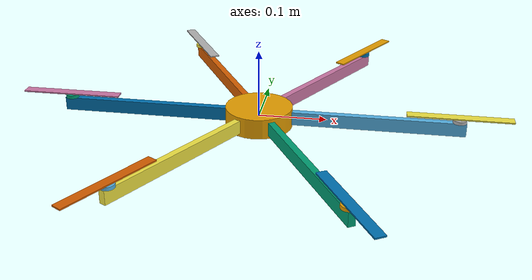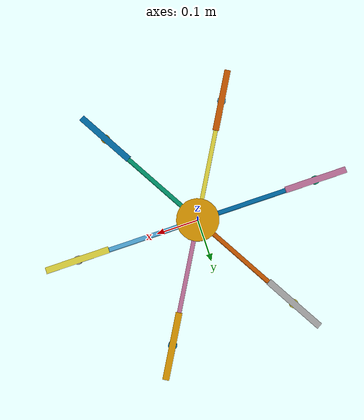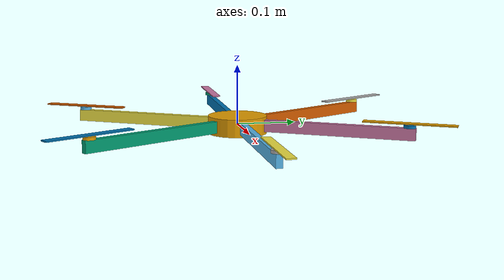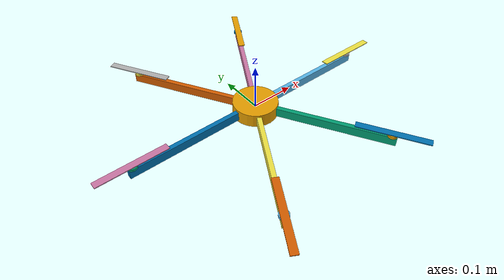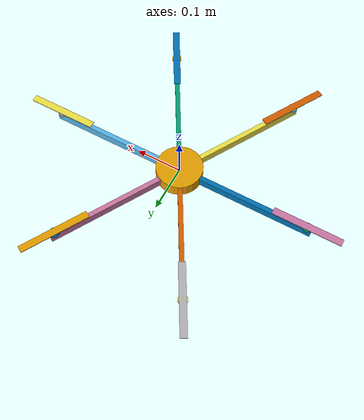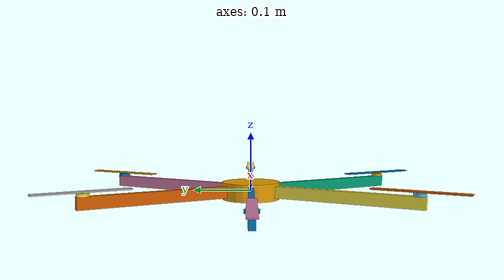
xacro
<?xml version="1.0"?>
<robot name="hexacopter" xmlns:xacro="http://www.ros.org/wiki/xacro">

<xacro:property name="body_mass" value="2"/>

<!-- body, airfoil size -->
<xacro:property name="body_s" value="1" />

<!-- body link parameters x, y, z, mass-->
<xacro:property name="body_r" value="${0.05*body_s}" />
<xacro:property name="body_h" value="${0.03*body_s}" />
<xacro:property name="body_m" value="${0.5*body_mass}" />

    <link name="body_FLU">
        <visual>
        <origin rpy="0 0 0"/>
            <geometry>
                <cylinder radius="${body_r}" length="${body_h}" />
            </geometry>
        </visual>

        <collision>
        <origin rpy="0 0 0"/>
            <geometry>
                <cylinder radius="${body_r}" length="${body_h}" />
            </geometry>
        </collision>

        <inertial>
        <origin rpy="0 0 0"/>
            <mass value="${body_m}" />
             <inertia   ixx="${1/12*body_m*body_h*body_h+1/4*body_m*body_r*body_r}" ixy="0" ixz="0" iyz="0"
                        iyy="${1/12*body_m*body_h*body_h+1/4*body_m*body_r*body_r}"
                        izz="${1/2*body_m*body_r*body_r}" />
        </inertial>

    </link>

---------------------------------------------------------- 6 quadcopter arms
<xacro:property name="arm_x" value="${0.3*body_s}" />
<xacro:property name="arm_y" value="${0.01*body_s}" />
<xacro:property name="arm_z" value="${0.02*body_s}" />
<xacro:property name="arm_m" value="${0.05*body_m}" />

    <link name="arm1">
        <visual>
        <origin xyz="${arm_x/2} 0 0"/>
            <geometry>
               <box size="${arm_x} ${arm_y} ${arm_z}" />
            </geometry>
        </visual>

        <collision>
        <origin xyz="${arm_x/2} 0 0"/>
            <geometry>
               <box size="${arm_x} ${arm_y} ${arm_z}" />
            </geometry>
        </collision>

        <inertial>
            <origin xyz="${arm_x/2} 0 0"/>
            <mass value="${arm_m}" />
            <inertia    ixx="${1/12*arm_m*(arm_y*arm_y+arm_z*arm_z)}" ixy="0" ixz="0" iyz="0"
                        iyy="${1/12*arm_m*(arm_x*arm_x+arm_z*arm_z)}"
                        izz="${1/12*arm_m*(arm_x*arm_x+arm_y*arm_y)}" />
        </inertial>
    </link>

    <joint name="body_FLU_to_arm1" type="fixed">
        <origin xyz="0 0 0" rpy="0 0 0"/>
        <parent link="body_FLU" />
        <child link="arm1" />
    </joint>

    <link name="arm2">
        <visual>
        <origin xyz="${arm_x/2} 0 0"/>
            <geometry>
                <box size="${arm_x} ${arm_y} ${arm_z}" />
            </geometry>
        </visual>

        <collision>
            <origin xyz="${arm_x/2} 0 0"/>
            <geometry>
                <box size="${arm_x} ${arm_y} ${arm_z}" />
            </geometry>
        </collision>

        <inertial>
            <origin xyz="${arm_x/2} 0 0"/>
            <mass value="${arm_m}" />
            <inertia    ixx="${1/12*arm_m*(arm_y*arm_y+arm_z*arm_z)}" ixy="0" ixz="0" iyz="0"
                        iyy="${1/12*arm_m*(arm_x*arm_x+arm_z*arm_z)}"
                        izz="${1/12*arm_m*(arm_x*arm_x+arm_y*arm_y)}" />
        </inertial>
    </link>

    <joint name="body_FLU_to_arm2" type="fixed">
        <origin xyz="0 0 0" rpy="0 0 ${5/3*pi}"/>
        <parent link="body_FLU" />
        <child link="arm2" />
    </joint>

        <link name="arm3">
        <visual>
        <origin xyz="${arm_x/2} 0 0"/>
            <geometry>
                <box size="${arm_x} ${arm_y} ${arm_z}" />
            </geometry>
        </visual>

        <collision>
            <origin xyz="${arm_x/2} 0 0"/>
            <geometry>
                <box size="${arm_x} ${arm_y} ${arm_z}" />
            </geometry>
        </collision>

        <inertial>
            <origin xyz="${arm_x/2} 0 0"/>
            <mass value="${arm_m}" />
            <inertia    ixx="${1/12*arm_m*(arm_y*arm_y+arm_z*arm_z)}" ixy="0" ixz="0" iyz="0"
                        iyy="${1/12*arm_m*(arm_x*arm_x+arm_z*arm_z)}"
                        izz="${1/12*arm_m*(arm_x*arm_x+arm_y*arm_y)}" />
        </inertial>
    </link>

    <joint name="body_FLU_to_arm3" type="fixed">
        <origin xyz="0 0 0" rpy="0 0 ${4/3*pi}"/>
        <parent link="body_FLU" />
        <child link="arm3" />
    </joint>

    <link name="arm4">
        <visual>
        <origin xyz="${arm_x/2} 0 0"/>
            <geometry>
                <box size="${arm_x} ${arm_y} ${arm_z}" />
            </geometry>
        </visual>

        <collision>
            <origin xyz="${arm_x/2} 0 0"/>
            <geometry>
                <box size="${arm_x} ${arm_y} ${arm_z}" />
            </geometry>
        </collision>

        <inertial>
            <origin xyz="${arm_x/2} 0 0"/>
            <mass value="${arm_m}" />
            <inertia    ixx="${1/12*arm_m*(arm_y*arm_y+arm_z*arm_z)}" ixy="0" ixz="0" iyz="0"
                        iyy="${1/12*arm_m*(arm_x*arm_x+arm_z*arm_z)}"
                        izz="${1/12*arm_m*(arm_x*arm_x+arm_y*arm_y)}" />
        </inertial>
    </link>

    <joint name="body_FLU_to_arm4" type="fixed">
        <origin xyz="0 0 0" rpy="0 0 ${pi}"/>
        <parent link="body_FLU" />
        <child link="arm4" />
    </joint>

    <link name="arm5">
        <visual>
        <origin xyz="${arm_x/2} 0 0"/>
            <geometry>
                <box size="${arm_x} ${arm_y} ${arm_z}" />
            </geometry>
        </visual>

        <collision>
            <origin xyz="${arm_x/2} 0 0"/>
            <geometry>
                <box size="${arm_x} ${arm_y} ${arm_z}" />
            </geometry>
        </collision>

        <inertial>
            <origin xyz="${arm_x/2} 0 0"/>
            <mass value="${arm_m}" />
            <inertia    ixx="${1/12*arm_m*(arm_y*arm_y+arm_z*arm_z)}" ixy="0" ixz="0" iyz="0"
                        iyy="${1/12*arm_m*(arm_x*arm_x+arm_z*arm_z)}"
                        izz="${1/12*arm_m*(arm_x*arm_x+arm_y*arm_y)}" />
        </inertial>
    </link>

    <joint name="body_FLU_to_arm5" type="fixed">
        <origin xyz="0 0 0" rpy="0 0 ${2/3*pi}"/>
        <parent link="body_FLU" />
        <child link="arm5" />
    </joint>

    <link name="arm6">
        <visual>
        <origin xyz="${arm_x/2} 0 0"/>
            <geometry>
                <box size="${arm_x} ${arm_y} ${arm_z}" />
            </geometry>
        </visual>

        <collision>
            <origin xyz="${arm_x/2} 0 0"/>
            <geometry>
                <box size="${arm_x} ${arm_y} ${arm_z}" />
            </geometry>
        </collision>

        <inertial>
            <origin xyz="${arm_x/2} 0 0"/>
            <mass value="${arm_m}" />
            <inertia    ixx="${1/12*arm_m*(arm_y*arm_y+arm_z*arm_z)}" ixy="0" ixz="0" iyz="0"
                        iyy="${1/12*arm_m*(arm_x*arm_x+arm_z*arm_z)}"
                        izz="${1/12*arm_m*(arm_x*arm_x+arm_y*arm_y)}" />
        </inertial>
    </link>

    <joint name="body_FLU_to_arm6" type="fixed">
        <origin xyz="0 0 0" rpy="0 0 ${1/3*pi}"/>
        <parent link="body_FLU" />
        <child link="arm6" />
    </joint>

    -------------------------------------------------------------------------- motors

<xacro:property name="motor_r" value="${0.01*body_s}" />
<xacro:property name="motor_h" value="${0.005*body_s}" />
<xacro:property name="motor_m" value="${0.03*body_m}" />

<!-- only motor(Number_0f_Motor) acceptable name for motors -->
    <link name="motor1">
        <visual>
        <origin xyz="${motor_h/2} 0 0" rpy="0 ${pi/2} 0"/>
            <geometry>
                <cylinder radius="${motor_r}" length="${motor_h}" />
            </geometry>
        </visual>

        <collision>
            <origin xyz="${motor_h/2} 0 0" rpy="0 ${pi/2} 0"/>
            <geometry>
                <cylinder radius="${motor_r}" length="${motor_h}" />
            </geometry>
        </collision>

        <inertial>
            <origin xyz="${motor_h/2} 0 0" rpy="0 ${pi/2} 0"/>
            <mass value="${motor_m}" />
            <inertia    ixx="${1/12*motor_m*motor_h*motor_h+1/4*motor_m*motor_r*motor_r}" ixy="0" ixz="0" iyz="0"
                        iyy="${1/12*motor_m*motor_h*motor_h+1/4*motor_m*motor_r*motor_r}"
                        izz="${1/2*motor_m*motor_r*motor_r}" />
        </inertial>
    </link>

    <joint name="arm1_to_motor1" type="revolute">
        <origin xyz="${arm_x-motor_r} 0 ${arm_z/2}" rpy="0 -1.57 0"/>
        <parent link="arm1" />
        <child link="motor1" />
        <limit effort="1000.0" velocity="0.5"/>  --default limits upper=lower=0
    </joint>

    <link name="motor2">
        <visual>
        <origin xyz="${motor_h/2} 0 0" rpy="0 ${pi/2} 0"/>
            <geometry>
                <cylinder radius="${motor_r}" length="${motor_h}" />
            </geometry>
        </visual>

        <collision>
            <origin xyz="${motor_h/2} 0 0" rpy="0 ${pi/2} 0"/>
            <geometry>
                <cylinder radius="${motor_r}" length="${motor_h}" />
            </geometry>
        </collision>

        <inertial>
            <origin xyz="${motor_h/2} 0 0" rpy="0 ${pi/2} 0"/>
            <mass value="${motor_m}" />
            <inertia    ixx="${1/12*motor_m*motor_h*motor_h+1/4*motor_m*motor_r*motor_r}" ixy="0" ixz="0" iyz="0"
                        iyy="${1/12*motor_m*motor_h*motor_h+1/4*motor_m*motor_r*motor_r}"
                        izz="${1/2*motor_m*motor_r*motor_r}" />
        </inertial>
    </link>

    <joint name="arm2_to_motor2" type="revolute">
        <origin xyz="${arm_x-motor_r} 0 ${arm_z/2}" rpy="0 -1.57 0"/>
        <parent link="arm2" />
        <child link="motor2" />
        <limit effort="1000.0" velocity="0.5"/>  --default limits upper=lower=0
    </joint>

    <link name="motor3">
        <visual>
        <origin xyz="${motor_h/2} 0 0" rpy="0 ${pi/2} 0"/>
            <geometry>
                <cylinder radius="${motor_r}" length="${motor_h}" />
            </geometry>
        </visual>

        <collision>
            <origin xyz="${motor_h/2} 0 0" rpy="0 ${pi/2} 0"/>
            <geometry>
                <cylinder radius="${motor_r}" length="${motor_h}" />
            </geometry>
        </collision>

        <inertial>
            <origin xyz="${motor_h/2} 0 0" rpy="0 ${pi/2} 0"/>
            <mass value="${motor_m}" />
            <inertia    ixx="${1/12*motor_m*motor_h*motor_h+1/4*motor_m*motor_r*motor_r}" ixy="0" ixz="0" iyz="0"
                        iyy="${1/12*motor_m*motor_h*motor_h+1/4*motor_m*motor_r*motor_r}"
                        izz="${1/2*motor_m*motor_r*motor_r}" />
        </inertial>
    </link>

    <joint name="arm3_to_motor3" type="revolute">
        <origin xyz="${arm_x-motor_r} 0 ${arm_z/2}" rpy="0 -1.57 0"/>
        <parent link="arm3" />
        <child link="motor3" />
        <limit effort="1000.0" velocity="0.5"/>  --default limits upper=lower=0
    </joint>

    <link name="motor4">
        <visual>
        <origin xyz="${motor_h/2} 0 0" rpy="0 ${pi/2} 0"/>
            <geometry>
                <cylinder radius="${motor_r}" length="${motor_h}" />
            </geometry>
        </visual>

        <collision>
            <origin xyz="${motor_h/2} 0 0" rpy="0 ${pi/2} 0"/>
            <geometry>
                <cylinder radius="${motor_r}" length="${motor_h}" />
            </geometry>
        </collision>

        <inertial>
            <origin xyz="${motor_h/2} 0 0" rpy="0 ${pi/2} 0"/>
            <mass value="${motor_m}" />
            <inertia    ixx="${1/12*motor_m*motor_h*motor_h+1/4*motor_m*motor_r*motor_r}" ixy="0" ixz="0" iyz="0"
                        iyy="${1/12*motor_m*motor_h*motor_h+1/4*motor_m*motor_r*motor_r}"
                        izz="${1/2*motor_m*motor_r*motor_r}" />
        </inertial>
    </link>

    <joint name="arm4_to_motor4" type="revolute">
        <origin xyz="${arm_x-motor_r} 0 ${arm_z/2}" rpy="0 -1.57 0"/>
        <parent link="arm4" />
        <child link="motor4" />
        <limit effort="1000.0" velocity="0.5"/>  --default limits upper=lower=0
    </joint>

         <link name="motor5">
        <visual>
        <origin xyz="${motor_h/2} 0 0" rpy="0 ${pi/2} 0"/>
            <geometry>
                <cylinder radius="${motor_r}" length="${motor_h}" />
            </geometry>
        </visual>

        <collision>
            <origin xyz="${motor_h/2} 0 0" rpy="0 ${pi/2} 0"/>
            <geometry>
                <cylinder radius="${motor_r}" length="${motor_h}" />
            </geometry>
        </collision>

        <inertial>
            <origin xyz="${motor_h/2} 0 0" rpy="0 ${pi/2} 0"/>
            <mass value="${motor_m}" />
            <inertia    ixx="${1/12*motor_m*motor_h*motor_h+1/4*motor_m*motor_r*motor_r}" ixy="0" ixz="0" iyz="0"
                        iyy="${1/12*motor_m*motor_h*motor_h+1/4*motor_m*motor_r*motor_r}"
                        izz="${1/2*motor_m*motor_r*motor_r}" />
        </inertial>
    </link>

    <joint name="arm5_to_motor5" type="revolute">
        <origin xyz="${arm_x-motor_r} 0 ${arm_z/2}" rpy="0 -1.57 0"/>
        <parent link="arm5" />
        <child link="motor5" />
        <limit effort="1000.0" velocity="0.5"/>  --default limits upper=lower=0
    </joint>

    <link name="motor6">
        <visual>
        <origin xyz="${motor_h/2} 0 0" rpy="0 ${pi/2} 0"/>
            <geometry>
                <cylinder radius="${motor_r}" length="${motor_h}" />
            </geometry>
        </visual>

        <collision>
            <origin xyz="${motor_h/2} 0 0" rpy="0 ${pi/2} 0"/>
            <geometry>
                <cylinder radius="${motor_r}" length="${motor_h}" />
            </geometry>
        </collision>

        <inertial>
            <origin xyz="${motor_h/2} 0 0" rpy="0 ${pi/2} 0"/>
            <mass value="${motor_m}" />
            <inertia    ixx="${1/12*motor_m*motor_h*motor_h+1/4*motor_m*motor_r*motor_r}" ixy="0" ixz="0" iyz="0"
                        iyy="${1/12*motor_m*motor_h*motor_h+1/4*motor_m*motor_r*motor_r}"
                        izz="${1/2*motor_m*motor_r*motor_r}" />
        </inertial>
    </link>

    <joint name="arm6_to_motor6" type="revolute">
        <origin xyz="${arm_x-motor_r} 0 ${arm_z/2}" rpy="0 -1.57 0"/>
        <parent link="arm6" />
        <child link="motor6" />
        <limit effort="1000.0" velocity="0.5"/>  --default limits upper=lower=0
    </joint>
 -------------------------------------------------------------------------------------------------- axles
<!-- arm link -->
<xacro:property name="axle_r" value="${0.003*body_s}" />
<xacro:property name="axle_h" value="${0.001*body_s}" />
<xacro:property name="axle_m" value="${0.001*body_m}" />

    <link name="axle1">
        <visual>
            <origin xyz="${axle_h/2} 0 0" rpy="0 ${pi/2} 0"/>
            <geometry>
                <cylinder radius="${axle_r}" length="${axle_h}" />
            </geometry>
        </visual>

        <collision>
            <origin xyz="${axle_h/2} 0 0" rpy="0 ${pi/2} 0"/>
            <geometry>
                <cylinder radius="${axle_r}" length="${axle_h}" />
            </geometry>
        </collision>

        <inertial>
            <origin xyz="${axle_h/2} 0 0" />
            <mass value="${axle_m}" />
            <inertia    ixx="${1/12*axle_m*axle_h*axle_h+1/4*axle_m*axle_r*axle_r}" ixy="0" ixz="0" iyz="0"
                        iyy="${1/12*axle_m*axle_h*axle_h+1/4*axle_m*axle_r*axle_r}"
                        izz="${1/2*axle_m*axle_r*axle_r}" />
        </inertial>
    </link>

    <joint name="motor1_to_axle1" type="continuous">
        <origin xyz="${motor_h+axle_h/2} 0 0" rpy="0 0 0"/>
        <axis xyz="1 0 0" />
        <parent link="motor1" />
        <child link="axle1" />
    </joint>

    <link name="axle2">
        <visual>
            <origin xyz="${axle_h/2} 0 0" rpy="0 ${pi/2} 0"/>
            <geometry>
                <cylinder radius="${axle_r}" length="${axle_h}" />
            </geometry>
        </visual>

        <collision>
            <origin xyz="${axle_h/2} 0 0" rpy="0 ${pi/2} 0"/>
            <geometry>
                <cylinder radius="${axle_r}" length="${axle_h}" />
            </geometry>
        </collision>

        <inertial>
            <origin xyz="${axle_h/2} 0 0" />
            <mass value="${axle_m}" />
            <inertia    ixx="${1/12*axle_m*axle_h*axle_h+1/4*axle_m*axle_r*axle_r}" ixy="0" ixz="0" iyz="0"
                        iyy="${1/12*axle_m*axle_h*axle_h+1/4*axle_m*axle_r*axle_r}"
                        izz="${1/2*axle_m*axle_r*axle_r}" />
        </inertial>
    </link>

    <joint name="motor2_to_axle2" type="continuous">
        <origin xyz="${motor_h} 0 0" rpy="0 0 0"/>
        <axis xyz="1 0 0" />
        <parent link="motor2" />
        <child link="axle2" />
    </joint>

    <link name="axle3">
        <visual>
            <origin xyz="${axle_h/2} 0 0" rpy="0 ${pi/2} 0"/>
            <geometry>
                <cylinder radius="${axle_r}" length="${axle_h}" />
            </geometry>
        </visual>

        <collision>
            <origin xyz="${axle_h/2} 0 0" rpy="0 ${pi/2} 0"/>
            <geometry>
                <cylinder radius="${axle_r}" length="${axle_h}" />
            </geometry>
        </collision>

        <inertial>
            <origin xyz="${axle_h/2} 0 0" />
            <mass value="${axle_m}" />
            <inertia    ixx="${1/12*axle_m*axle_h*axle_h+1/4*axle_m*axle_r*axle_r}" ixy="0" ixz="0" iyz="0"
                        iyy="${1/12*axle_m*axle_h*axle_h+1/4*axle_m*axle_r*axle_r}"
                        izz="${1/2*axle_m*axle_r*axle_r}" />
        </inertial>
    </link>

    <joint name="motor3_to_axle3" type="continuous">
        <origin xyz="${motor_h} 0 0" rpy="0 0 0"/>
        <axis xyz="1 0 0" />
        <parent link="motor3" />
        <child link="axle3" />
    </joint>

    <link name="axle4">
        <visual>
            <origin xyz="${axle_h/2} 0 0" rpy="0 ${pi/2} 0"/>
            <geometry>
                <cylinder radius="${axle_r}" length="${axle_h}" />
            </geometry>
        </visual>

        <collision>
            <origin xyz="${axle_h/2} 0 0" rpy="0 ${pi/2} 0"/>
            <geometry>
                <cylinder radius="${axle_r}" length="${axle_h}" />
            </geometry>
        </collision>

        <inertial>
            <origin xyz="${axle_h/2} 0 0" />
            <mass value="${axle_m}" />
            <inertia    ixx="${1/12*axle_m*axle_h*axle_h+1/4*axle_m*axle_r*axle_r}" ixy="0" ixz="0" iyz="0"
                        iyy="${1/12*axle_m*axle_h*axle_h+1/4*axle_m*axle_r*axle_r}"
                        izz="${1/2*axle_m*axle_r*axle_r}" />
        </inertial>
    </link>

    <joint name="motor4_to_axle4" type="continuous">
        <origin xyz="${motor_h} 0 0" rpy="0 0 0"/>
        <axis xyz="1 0 0" />
        <parent link="motor4" />
        <child link="axle4" />
    </joint>

    <link name="axle5">
        <visual>
            <origin xyz="${axle_h/2} 0 0" rpy="0 ${pi/2} 0"/>
            <geometry>
                <cylinder radius="${axle_r}" length="${axle_h}" />
            </geometry>
        </visual>

        <collision>
            <origin xyz="${axle_h/2} 0 0" rpy="0 ${pi/2} 0"/>
            <geometry>
                <cylinder radius="${axle_r}" length="${axle_h}" />
            </geometry>
        </collision>

        <inertial>
            <origin xyz="${axle_h/2} 0 0" />
            <mass value="${axle_m}" />
            <inertia    ixx="${1/12*axle_m*axle_h*axle_h+1/4*axle_m*axle_r*axle_r}" ixy="0" ixz="0" iyz="0"
                        iyy="${1/12*axle_m*axle_h*axle_h+1/4*axle_m*axle_r*axle_r}"
                        izz="${1/2*axle_m*axle_r*axle_r}" />
        </inertial>
    </link>

    <joint name="motor5_to_axle5" type="continuous">
        <origin xyz="${motor_h} 0 0" rpy="0 0 0"/>
        <axis xyz="1 0 0" />
        <parent link="motor5" />
        <child link="axle5" />
    </joint>

    <link name="axle6">
        <visual>
            <origin xyz="${axle_h/2} 0 0" rpy="0 ${pi/2} 0"/>
            <geometry>
                <cylinder radius="${axle_r}" length="${axle_h}" />
            </geometry>
        </visual>

        <collision>
            <origin xyz="${axle_h/2} 0 0" rpy="0 ${pi/2} 0"/>
            <geometry>
                <cylinder radius="${axle_r}" length="${axle_h}" />
            </geometry>
        </collision>

        <inertial>
            <origin xyz="${axle_h/2} 0 0" />
            <mass value="${axle_m}" />
            <inertia    ixx="${1/12*axle_m*axle_h*axle_h+1/4*axle_m*axle_r*axle_r}" ixy="0" ixz="0" iyz="0"
                        iyy="${1/12*axle_m*axle_h*axle_h+1/4*axle_m*axle_r*axle_r}"
                        izz="${1/2*axle_m*axle_r*axle_r}" />
        </inertial>
    </link>

    <joint name="motor6_to_axle6" type="continuous">
        <origin xyz="${motor_h} 0 0" rpy="0 0 0"/>
        <axis xyz="1 0 0" />
        <parent link="motor6" />
        <child link="axle6" />
    </joint>

  ----------------------------------------------------------------------------------------------------- propellers
<!-- propeller links -->
<xacro:property name="propeller_x" value="${0.15*body_s}" />
<xacro:property name="propeller_y" value="${0.015*body_s}" />
<xacro:property name="propeller_z" value="${0.002*body_s}" />
<xacro:property name="propeller_m" value="${0.001*body_m}" />

    <link name="prop1">
        <visual>
            <origin xyz="${propeller_z/2} 0 0" rpy="0 ${pi/2} 0"/>
            <geometry>
                <box size="${propeller_x} ${propeller_y} ${propeller_z}" />
            </geometry>
        </visual>

        <collision>
            <origin xyz="${propeller_z/2} 0 0" rpy="0 ${pi/2} 0"/>
            <geometry>
                <box size="${propeller_x} ${propeller_y} ${propeller_z}" />
            </geometry>
        </collision>

        <inertial>
            <origin xyz="${propeller_z/2} 0 0" rpy="0 ${pi/2} 0"/>
            <mass value="${propeller_m}" />
            <inertia    ixx="${1/12*propeller_m*(propeller_y*propeller_y+propeller_z*propeller_z)}" ixy="0" ixz="0" iyz="0"
                        iyy="${1/12*propeller_m*(propeller_x*propeller_x+propeller_z*propeller_z)}"
                        izz="${1/12*propeller_m*(propeller_x*propeller_x+propeller_y*propeller_y)}" />
        </inertial>
    </link>

    <joint name="axle1_to_prop1" type="fixed">
        <origin xyz="${axle_h} 0 0" rpy="0 0 0"/>
        <axis xyz="1 0 0" />
        <parent link="axle1" />
        <child link="prop1" />
    </joint>

    <link name="prop2">
        <visual>
            <origin xyz="${propeller_z/2} 0 0" rpy="0 ${pi/2} 0"/>
            <geometry>
                <box size="${propeller_x} ${propeller_y} ${propeller_z}" />
            </geometry>
        </visual>

        <collision>
            <origin xyz="${propeller_z/2} 0 0" rpy="0 ${pi/2} 0"/>
            <geometry>
                <box size="${propeller_x} ${propeller_y} ${propeller_z}" />
            </geometry>
        </collision>

        <inertial>
            <origin xyz="${propeller_z/2} 0 0" rpy="0 ${pi/2} 0"/>
            <mass value="${propeller_m}" />
            <inertia    ixx="${1/12*propeller_m*(propeller_y*propeller_y+propeller_z*propeller_z)}" ixy="0" ixz="0" iyz="0"
                        iyy="${1/12*propeller_m*(propeller_x*propeller_x+propeller_z*propeller_z)}"
                        izz="${1/12*propeller_m*(propeller_x*propeller_x+propeller_y*propeller_y)}" />
        </inertial>
    </link>

    <joint name="axle2_to_prop2" type="fixed">
        <origin xyz="${axle_h} 0 0" rpy="0 0 0"/>
        <axis xyz="1 0 0" />
        <parent link="axle2" />
        <child link="prop2" />
    </joint>

    <link name="prop3">
        <visual>
            <origin xyz="${propeller_z/2} 0 0" rpy="0 ${pi/2} 0"/>
            <geometry>
                <box size="${propeller_x} ${propeller_y} ${propeller_z}" />
            </geometry>
        </visual>

        <collision>
            <origin xyz="${propeller_z/2} 0 0" rpy="0 ${pi/2} 0"/>
            <geometry>
                <box size="${propeller_x} ${propeller_y} ${propeller_z}" />
            </geometry>
        </collision>

        <inertial>
            <origin xyz="${propeller_z/2} 0 0" rpy="0 ${pi/2} 0"/>
            <mass value="${propeller_m}" />
            <inertia    ixx="${1/12*propeller_m*(propeller_y*propeller_y+propeller_z*propeller_z)}" ixy="0" ixz="0" iyz="0"
                        iyy="${1/12*propeller_m*(propeller_x*propeller_x+propeller_z*propeller_z)}"
                        izz="${1/12*propeller_m*(propeller_x*propeller_x+propeller_y*propeller_y)}" />
        </inertial>
    </link>

    <joint name="axle3_to_prop3" type="fixed">
        <origin xyz="${axle_h} 0 0" rpy="0 0 0"/>
        <axis xyz="1 0 0" />
        <parent link="axle3" />
        <child link="prop3" />
    </joint>

    <link name="prop4">
        <visual>
            <origin xyz="${propeller_z/2} 0 0" rpy="0 ${pi/2} 0"/>
            <geometry>
                <box size="${propeller_x} ${propeller_y} ${propeller_z}" />
            </geometry>
        </visual>

        <collision>
            <origin xyz="${propeller_z/2} 0 0" rpy="0 ${pi/2} 0"/>
            <geometry>
                <box size="${propeller_x} ${propeller_y} ${propeller_z}" />
            </geometry>
        </collision>

        <inertial>
            <origin xyz="${propeller_z/2} 0 0" rpy="0 ${pi/2} 0"/>
            <mass value="${propeller_m}" />
            <inertia    ixx="${1/12*propeller_m*(propeller_y*propeller_y+propeller_z*propeller_z)}" ixy="0" ixz="0" iyz="0"
                        iyy="${1/12*propeller_m*(propeller_x*propeller_x+propeller_z*propeller_z)}"
                        izz="${1/12*propeller_m*(propeller_x*propeller_x+propeller_y*propeller_y)}" />
        </inertial>
    </link>

    <joint name="axle4_to_prop4" type="fixed">
        <origin xyz="${axle_h} 0 0" rpy="0 0 0"/>
        <axis xyz="1 0 0" />
        <parent link="axle4" />
        <child link="prop4" />
    </joint>

    <link name="prop5">
        <visual>
            <origin xyz="${propeller_z/2} 0 0" rpy="0 ${pi/2} 0"/>
            <geometry>
                <box size="${propeller_x} ${propeller_y} ${propeller_z}" />
            </geometry>
        </visual>

        <collision>
            <origin xyz="${propeller_z/2} 0 0" rpy="0 ${pi/2} 0"/>
            <geometry>
                <box size="${propeller_x} ${propeller_y} ${propeller_z}" />
            </geometry>
        </collision>

        <inertial>
            <origin xyz="${propeller_z/2} 0 0" rpy="0 ${pi/2} 0"/>
            <mass value="${propeller_m}" />
            <inertia    ixx="${1/12*propeller_m*(propeller_y*propeller_y+propeller_z*propeller_z)}" ixy="0" ixz="0" iyz="0"
                        iyy="${1/12*propeller_m*(propeller_x*propeller_x+propeller_z*propeller_z)}"
                        izz="${1/12*propeller_m*(propeller_x*propeller_x+propeller_y*propeller_y)}" />
        </inertial>
    </link>

    <joint name="axle5_to_prop5" type="fixed">
        <origin xyz="${axle_h} 0 0" rpy="0 0 0"/>
        <axis xyz="1 0 0" />
        <parent link="axle5" />
        <child link="prop5" />
    </joint>

    <link name="prop6">
        <visual>
            <origin xyz="${propeller_z/2} 0 0" rpy="0 ${pi/2} 0"/>
            <geometry>
                <box size="${propeller_x} ${propeller_y} ${propeller_z}" />
            </geometry>
        </visual>

        <collision>
            <origin xyz="${propeller_z/2} 0 0" rpy="0 ${pi/2} 0"/>
            <geometry>
                <box size="${propeller_x} ${propeller_y} ${propeller_z}" />
            </geometry>
        </collision>

        <inertial>
            <origin xyz="${propeller_z/2} 0 0" rpy="0 ${pi/2} 0"/>
            <mass value="${propeller_m}" />
            <inertia    ixx="${1/12*propeller_m*(propeller_y*propeller_y+propeller_z*propeller_z)}" ixy="0" ixz="0" iyz="0"
                        iyy="${1/12*propeller_m*(propeller_x*propeller_x+propeller_z*propeller_z)}"
                        izz="${1/12*propeller_m*(propeller_x*propeller_x+propeller_y*propeller_y)}" />
        </inertial>
    </link>

    <joint name="axle6_to_prop6" type="fixed">
        <origin xyz="${axle_h} 0 0" rpy="0 0 0"/>
        <axis xyz="1 0 0" />
        <parent link="axle6" />
        <child link="prop6" />
    </joint>

    <!-- model plugins -->
    <gazebo>
        <plugin name="model_plugin" filename="libmodel_plugin.so"/>
        <plugin name="joint_state_publisher" filename="libgazebo_ros_joint_state_publisher.so">
            <jointName>arm1_to_motor1, arm2_to_motor2, arm3_to_motor3,arm4_to_motor4,arm5_to_motor5,arm6_to_motor6,motor1_to_axle1,motor2_to_axle2,motor3_to_axle3,motor4_to_axle4,motor5_to_axle5,motor6_to_axle6 </jointName>
            <robotNamespace>last_letter_2</robotNamespace>
            <updateRate>0</updateRate>
        </plugin>
    </gazebo>
</robot>
